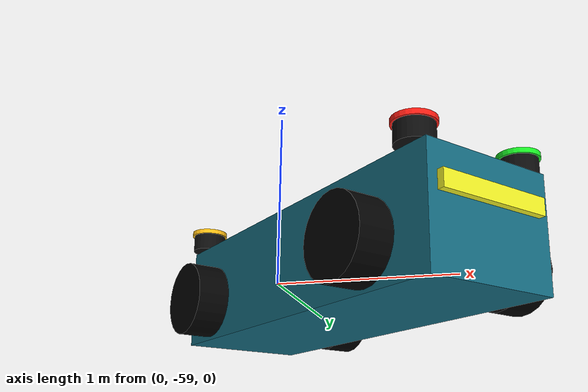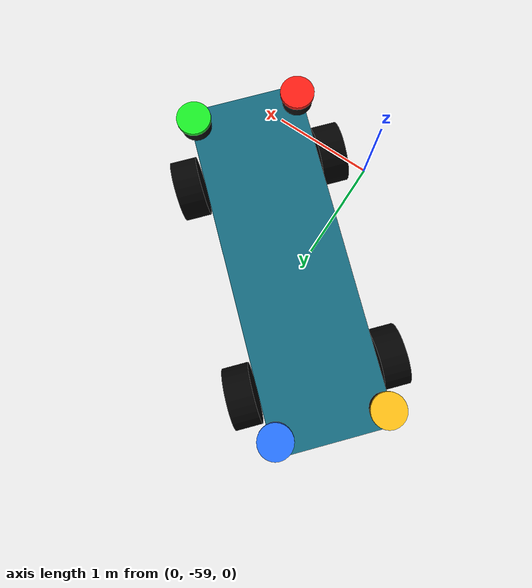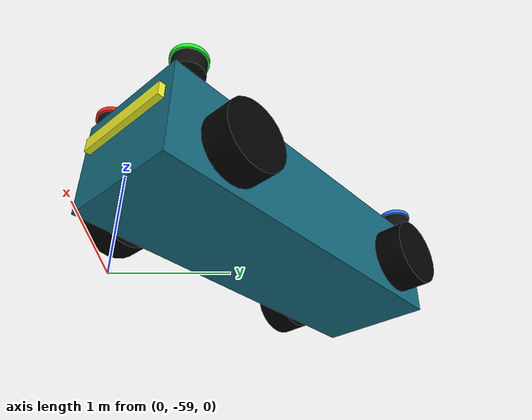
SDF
<?xml version="1.0"?>
<sdf version="1.9">
  <model name="agv_with_lidars">
    <pose>0.0674 -57.6716 0.4 0 0 -0.7297</pose>
    <static>false</static>

    <link name="base_link">
      <inertial>
        <mass>850.0</mass>
        <inertia>
          <ixx>116.0</ixx>
          <ixy>0.0</ixy>
          <ixz>0.0</ixz>
          <iyy>684.0</iyy>
          <iyz>0.0</iyz>
          <izz>708.0</izz>
        </inertia>
      </inertial>
      <collision name="body_collision">
        <geometry>
          <box>
            <size>3.0 1.0 0.8</size>
          </box>
        </geometry>
      </collision>
      <visual name="body_visual">
        <geometry>
          <box>
            <size>3.0 1.0 0.8</size>
          </box>
        </geometry>
        <material>
          <ambient>0.08 0.22 0.28 1.0</ambient>
          <diffuse>0.08 0.42 0.50 1.0</diffuse>
          <specular>0.2 0.25 0.25 1.0</specular>
        </material>
      </visual>

      <visual name="front_marker">
        <pose>1.525 0 0.15 0 0 0</pose>
        <geometry>
          <box>
            <size>0.05 0.85 0.12</size>
          </box>
        </geometry>
        <material>
          <ambient>0.85 0.85 0.1 1.0</ambient>
          <diffuse>0.95 0.95 0.15 1.0</diffuse>
        </material>
      </visual>

      <visual name="front_left_wheel_visual">
        <pose>1.0 0.68 -0.12 1.5708 0 0</pose>
        <geometry>
          <cylinder>
            <radius>0.28</radius>
            <length>0.24</length>
          </cylinder>
        </geometry>
        <material>
          <ambient>0.01 0.01 0.01 1.0</ambient>
          <diffuse>0.01 0.01 0.01 1.0</diffuse>
          <specular>0.25 0.25 0.25 1.0</specular>
        </material>
      </visual>
      <visual name="front_right_wheel_visual">
        <pose>1.0 -0.68 -0.12 1.5708 0 0</pose>
        <geometry>
          <cylinder>
            <radius>0.28</radius>
            <length>0.24</length>
          </cylinder>
        </geometry>
        <material>
          <ambient>0.01 0.01 0.01 1.0</ambient>
          <diffuse>0.01 0.01 0.01 1.0</diffuse>
          <specular>0.25 0.25 0.25 1.0</specular>
        </material>
      </visual>
      <visual name="rear_left_wheel_visual">
        <pose>-1.0 0.68 -0.12 1.5708 0 0</pose>
        <geometry>
          <cylinder>
            <radius>0.28</radius>
            <length>0.24</length>
          </cylinder>
        </geometry>
        <material>
          <ambient>0.01 0.01 0.01 1.0</ambient>
          <diffuse>0.01 0.01 0.01 1.0</diffuse>
          <specular>0.25 0.25 0.25 1.0</specular>
        </material>
      </visual>
      <visual name="rear_right_wheel_visual">
        <pose>-1.0 -0.68 -0.12 1.5708 0 0</pose>
        <geometry>
          <cylinder>
            <radius>0.28</radius>
            <length>0.24</length>
          </cylinder>
        </geometry>
        <material>
          <ambient>0.01 0.01 0.01 1.0</ambient>
          <diffuse>0.01 0.01 0.01 1.0</diffuse>
          <specular>0.25 0.25 0.25 1.0</specular>
        </material>
      </visual>

    </link>

    <link name="front_left_lidar_link">
      <pose>1.35 0.45 0.47 0 0 0.785398</pose>
      <visual name="lidar_visual">
        <pose>0 0 0 0 0 0</pose>
        <geometry>
          <cylinder>
            <radius>0.13</radius>
            <length>0.14</length>
          </cylinder>
        </geometry>
        <material>
          <ambient>0.05 0.05 0.05 1.0</ambient>
          <diffuse>0.05 0.05 0.05 1.0</diffuse>
          <specular>0.35 0.35 0.35 1.0</specular>
        </material>
      </visual>
      <visual name="lidar_color_cap">
        <pose>0 0 0.08 0 0 0</pose>
        <geometry>
          <cylinder>
            <radius>0.145</radius>
            <length>0.035</length>
          </cylinder>
        </geometry>
        <material>
          <ambient>0.1 0.95 0.15 1.0</ambient>
          <diffuse>0.1 0.95 0.15 1.0</diffuse>
        </material>
      </visual>
      <sensor name="front_left_lidar" type="gpu_lidar">
        <topic>/sensing/lidar/front_left</topic>
        <update_rate>10</update_rate>
        <lidar>
          <scan>
            <horizontal>
              <samples>1800</samples>
              <resolution>1</resolution>
              <min_angle>-3.141593</min_angle>
              <max_angle>3.141593</max_angle>
            </horizontal>
            <vertical>
              <samples>32</samples>
              <resolution>1</resolution>
              <min_angle>-0.279253</min_angle>
              <max_angle>0.261799</max_angle>
            </vertical>
          </scan>
          <range>
            <min>0.08</min>
            <max>120.0</max>
            <resolution>0.01</resolution>
          </range>
        </lidar>
        <alwaysOn>1</alwaysOn>
        <visualize>true</visualize>
      </sensor>
    </link>
    <joint name="front_left_lidar_joint" type="fixed">
      <parent>base_link</parent>
      <child>front_left_lidar_link</child>
    </joint>

    <link name="front_right_lidar_link">
      <pose>1.35 -0.45 0.47 0 0 -0.785398</pose>
      <visual name="lidar_visual">
        <pose>0 0 0 0 0 0</pose>
        <geometry>
          <cylinder>
            <radius>0.13</radius>
            <length>0.14</length>
          </cylinder>
        </geometry>
        <material>
          <ambient>0.05 0.05 0.05 1.0</ambient>
          <diffuse>0.05 0.05 0.05 1.0</diffuse>
          <specular>0.35 0.35 0.35 1.0</specular>
        </material>
      </visual>
      <visual name="lidar_color_cap">
        <pose>0 0 0.08 0 0 0</pose>
        <geometry>
          <cylinder>
            <radius>0.145</radius>
            <length>0.035</length>
          </cylinder>
        </geometry>
        <material>
          <ambient>1.0 0.12 0.08 1.0</ambient>
          <diffuse>1.0 0.12 0.08 1.0</diffuse>
        </material>
      </visual>
      <sensor name="front_right_lidar" type="gpu_lidar">
        <topic>/sensing/lidar/front_right</topic>
        <update_rate>10</update_rate>
        <lidar>
          <scan>
            <horizontal>
              <samples>1800</samples>
              <resolution>1</resolution>
              <min_angle>-3.141593</min_angle>
              <max_angle>3.141593</max_angle>
            </horizontal>
            <vertical>
              <samples>32</samples>
              <resolution>1</resolution>
              <min_angle>-0.959931</min_angle>
              <max_angle>0.261799</max_angle>
            </vertical>
          </scan>
          <range>
            <min>0.2</min>
            <max>150.0</max>
            <resolution>0.01</resolution>
          </range>
        </lidar>
        <alwaysOn>1</alwaysOn>
        <visualize>true</visualize>
      </sensor>
    </link>
    <joint name="front_right_lidar_joint" type="fixed">
      <parent>base_link</parent>
      <child>front_right_lidar_link</child>
    </joint>

    <link name="rear_left_lidar_link">
      <pose>-1.35 0.45 0.47 0 0 2.35619</pose>
      <visual name="lidar_visual">
        <pose>0 0 0 0 0 0</pose>
        <geometry>
          <cylinder>
            <radius>0.13</radius>
            <length>0.14</length>
          </cylinder>
        </geometry>
        <material>
          <ambient>0.05 0.05 0.05 1.0</ambient>
          <diffuse>0.05 0.05 0.05 1.0</diffuse>
          <specular>0.35 0.35 0.35 1.0</specular>
        </material>
      </visual>
      <visual name="lidar_color_cap">
        <pose>0 0 0.08 0 0 0</pose>
        <geometry>
          <cylinder>
            <radius>0.145</radius>
            <length>0.035</length>
          </cylinder>
        </geometry>
        <material>
          <ambient>0.15 0.45 1.0 1.0</ambient>
          <diffuse>0.15 0.45 1.0 1.0</diffuse>
        </material>
      </visual>
      <sensor name="rear_left_lidar" type="gpu_lidar">
        <topic>/sensing/lidar/rear_left</topic>
        <update_rate>10</update_rate>
        <lidar>
          <scan>
            <horizontal>
              <samples>1800</samples>
              <resolution>1</resolution>
              <min_angle>-3.141593</min_angle>
              <max_angle>3.141593</max_angle>
            </horizontal>
            <vertical>
              <samples>32</samples>
              <resolution>1</resolution>
              <min_angle>-0.279253</min_angle>
              <max_angle>0.261799</max_angle>
            </vertical>
          </scan>
          <range>
            <min>0.08</min>
            <max>120.0</max>
            <resolution>0.01</resolution>
          </range>
        </lidar>
        <alwaysOn>1</alwaysOn>
        <visualize>true</visualize>
      </sensor>
    </link>
    <joint name="rear_left_lidar_joint" type="fixed">
      <parent>base_link</parent>
      <child>rear_left_lidar_link</child>
    </joint>

    <link name="rear_right_lidar_link">
      <pose>-1.35 -0.45 0.47 0 0 -2.35619</pose>
      <visual name="lidar_visual">
        <pose>0 0 0 0 0 0</pose>
        <geometry>
          <cylinder>
            <radius>0.13</radius>
            <length>0.14</length>
          </cylinder>
        </geometry>
        <material>
          <ambient>0.05 0.05 0.05 1.0</ambient>
          <diffuse>0.05 0.05 0.05 1.0</diffuse>
          <specular>0.35 0.35 0.35 1.0</specular>
        </material>
      </visual>
      <visual name="lidar_color_cap">
        <pose>0 0 0.08 0 0 0</pose>
        <geometry>
          <cylinder>
            <radius>0.145</radius>
            <length>0.035</length>
          </cylinder>
        </geometry>
        <material>
          <ambient>1.0 0.75 0.08 1.0</ambient>
          <diffuse>1.0 0.75 0.08 1.0</diffuse>
        </material>
      </visual>
      <sensor name="rear_right_lidar" type="gpu_lidar">
        <topic>/sensing/lidar/rear_right</topic>
        <update_rate>10</update_rate>
        <lidar>
          <scan>
            <horizontal>
              <samples>1800</samples>
              <resolution>1</resolution>
              <min_angle>-3.141593</min_angle>
              <max_angle>3.141593</max_angle>
            </horizontal>
            <vertical>
              <samples>32</samples>
              <resolution>1</resolution>
              <min_angle>-0.959931</min_angle>
              <max_angle>0.261799</max_angle>
            </vertical>
          </scan>
          <range>
            <min>0.2</min>
            <max>150.0</max>
            <resolution>0.01</resolution>
          </range>
        </lidar>
        <alwaysOn>1</alwaysOn>
        <visualize>true</visualize>
      </sensor>
    </link>
    <joint name="rear_right_lidar_joint" type="fixed">
      <parent>base_link</parent>
      <child>rear_right_lidar_link</child>
    </joint>
  </model>
</sdf>
